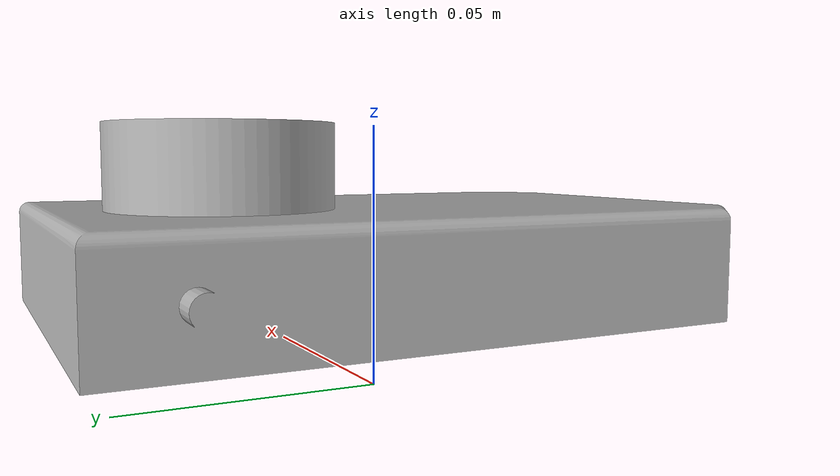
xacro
<?xml version="1.0" ?>
<robot name="basic_robot" xmlns:xacro="http://www.ros.org/wiki/xacro">

<xacro:include filename="$(find basic_robot_description)/urdf/materials.xacro" />
<xacro:include filename="$(find basic_robot_description)/urdf/basic_robot.ros2control" />
<xacro:include filename="$(find basic_robot_description)/urdf/basic_robot.gazebo" />
<link name="base_link">
  <inertial>
    <origin xyz="5.446978781099648e-18 0.0032917487693159796 0.026565339090989713" rpy="0 0 0"/>
    <mass value="0.2212383283060716"/>
    <inertia ixx="0.000267" iyy="0.00012" izz="0.000362" ixy="0.0" iyz="-9e-06" ixz="-0.0"/>
  </inertial>
  <visual>
    <origin xyz="0 0 0" rpy="0 0 0"/>
    <geometry>
      <mesh filename="file://$(find basic_robot_description)/meshes/base_link.stl" scale="0.001 0.001 0.001"/>
    </geometry>
    <material name="silver"/>
  </visual>
  <collision>
    <origin xyz="0 0 0" rpy="0 0 0"/>
    <geometry>
      <mesh filename="file://$(find basic_robot_description)/meshes/base_link.stl" scale="0.001 0.001 0.001"/>
    </geometry>
  </collision>
</link>

</robot>

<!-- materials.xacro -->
<robot name="basic_robot" xmlns:xacro="http://www.ros.org/wiki/xacro" >

<material name="silver">
  <color rgba="0.700 0.700 0.700 1.000"/>
</material>

</robot>

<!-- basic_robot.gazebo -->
<robot name="basic_robot" xmlns:xacro="http://www.ros.org/wiki/xacro" >

<xacro:property name="body_color" value="Gazebo/Silver" />

<gazebo reference="base_link">
  <material>${body_color}</material>
  <mu1>0.2</mu1>
  <mu2>0.2</mu2>
  <self_collide>true</self_collide>
  <gravity>true</gravity>
</gazebo>

</robot>
